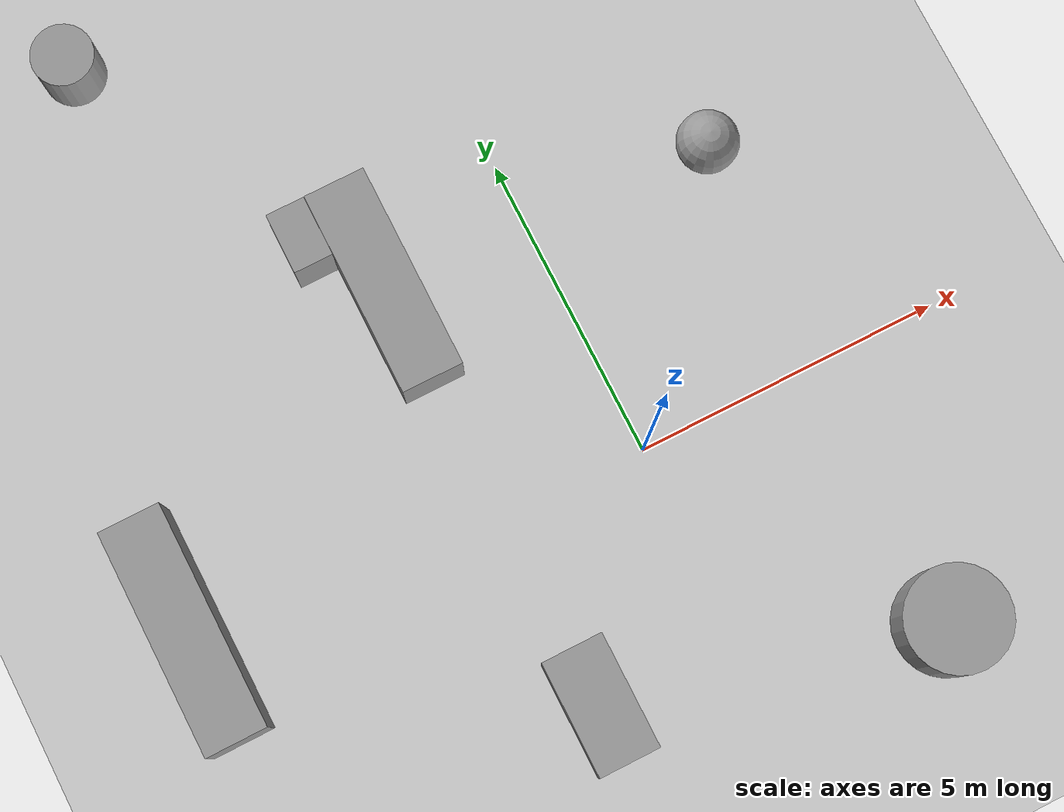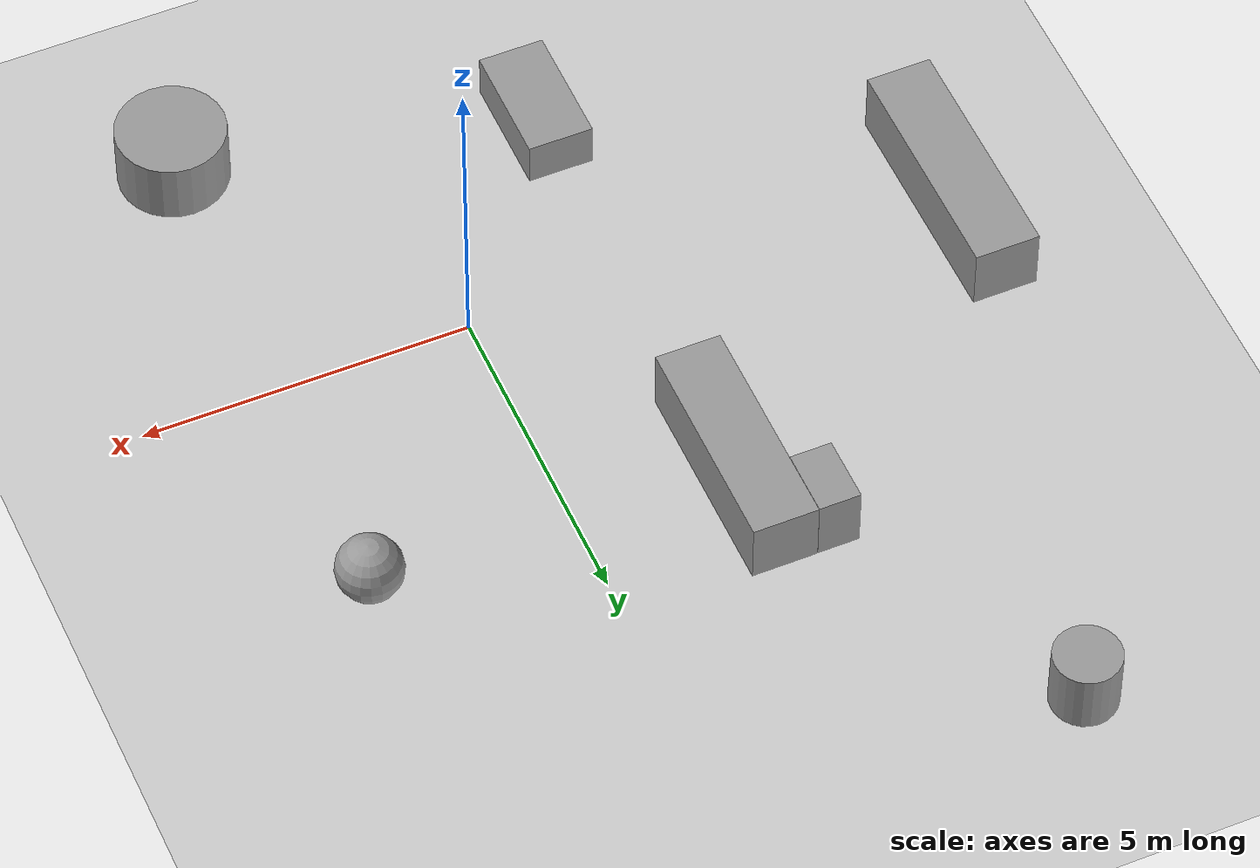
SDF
<sdf version="1.7">
 <world name="default">
  <light name="sun" type="directional">
   <pose>0 0 10 0 -0 0</pose>
   <diffuse>0.8 0.8 0.8 1</diffuse>
   <specular>0.2 0.2 0.2 1</specular>
   <attenuation>
    <range>1000</range>
    <constant>0.9</constant>
    <linear>0.01</linear>
    <quadratic>0.001</quadratic>
   </attenuation>
   <direction>-0.5 0.1 -0.9</direction>
   <spot><inner_angle>0</inner_angle><outer_angle>0</outer_angle><falloff>0</falloff></spot>
  </light>
  <model name="ground_plane">
   <static>1</static>
   <link name="link">
    <collision name="collision">
     <geometry><plane><normal>0 0 1</normal><size>100 100</size></plane></geometry>
     <surface>
      <contact><collide_bitmask>65535</collide_bitmask></contact>
      <friction><ode><mu>100</mu><mu2>50</mu2></ode></friction>
     </surface>
    </collision>
    <visual name="visual">
     <cast_shadows>0</cast_shadows>
     <geometry><plane><normal>0 0 1</normal><size>100 100</size></plane></geometry>
     <material>
      <script><uri>file://media/materials/scripts/gazebo.material</uri><name>Gazebo/Grey</name></script>
     </material>
    </visual>
   </link>
  </model>
  <gravity>0 0 -9.8</gravity>
  <magnetic_field>6e-06 2.3e-05 -4.2e-05</magnetic_field>
  <atmosphere type="adiabatic"/>
  <physics type="ode">
   <max_step_size>0.001</max_step_size>
   <real_time_factor>1</real_time_factor>
   <real_time_update_rate>1000</real_time_update_rate>
  </physics>
  <scene><ambient>0.4 0.4 0.4 1</ambient><background>0.7 0.7 0.7 1</background><shadows>1</shadows></scene>
  <audio><device>default</device></audio>
  <spherical_coordinates>
   <surface_model>EARTH_WGS84</surface_model>
   <latitude_deg>0</latitude_deg>
   <longitude_deg>0</longitude_deg>
   <elevation>0</elevation>
   <heading_deg>0</heading_deg>
  </spherical_coordinates>
  <model name="unit_box_1">
   <pose>-3.23534 5.16277 0.5 0 0 -2e-06</pose>
   <link name="link">
    <inertial>
     <mass>1</mass>
     <inertia>
      <ixx>0.166667</ixx>
      <ixy>0</ixy>
      <ixz>0</ixz>
      <iyy>0.166667</iyy>
      <iyz>0</iyz>
      <izz>0.166667</izz>
     </inertia>
    </inertial>
    <collision name="collision"><geometry><box><size>0.637201 1 1</size></box></geometry></collision>
    <visual name="visual">
     <geometry><box><size>0.637201 1 1</size></box></geometry>
     <material>
      <script><name>Gazebo/Grey</name><uri>file://media/materials/scripts/gazebo.material</uri></script>
     </material>
    </visual>
   </link>
   <static>1</static>
  </model>
  <model name="unit_box_4">
   <pose>-2.38141 -3.1313 0.35432 1.9e-05 -0 -6.2e-05</pose>
   <link name="link">
    <inertial>
     <mass>1</mass>
     <inertia>
      <ixx>0.166667</ixx>
      <ixy>0</ixy>
      <ixz>0</ixz>
      <iyy>0.166667</iyy>
      <iyz>0</iyz>
      <izz>0.166667</izz>
     </inertia>
    </inertial>
    <collision name="collision"><geometry><box><size>1 1.87531 0.708676</size></box></geometry></collision>
    <visual name="visual">
     <geometry><box><size>1 1.87531 0.708676</size></box></geometry>
     <material>
      <script><name>Gazebo/Grey</name><uri>file://media/materials/scripts/gazebo.material</uri></script>
     </material>
    </visual>
   </link>
  </model>
  <model name="unit_cylinder_1_clone">
   <pose>2.83996 -4.38871 0.499995 6e-06 -5e-06 0</pose>
   <link name="link">
    <inertial>
     <mass>1</mass>
     <inertia><ixx>0.145833</ixx><ixy>0</ixy><ixz>0</ixz><iyy>0.145833</iyy><iyz>0</iyz><izz>0.125</izz></inertia>
    </inertial>
    <collision name="collision">
     <geometry><cylinder><radius>0.831077</radius><length>1</length></cylinder></geometry>
    </collision>
    <visual name="visual">
     <geometry><cylinder><radius>0.831077</radius><length>1</length></cylinder></geometry>
     <material>
      <script><name>Gazebo/Grey</name><uri>file://media/materials/scripts/gazebo.material</uri></script>
     </material>
    </visual>
   </link>
  </model>
  <model name="unit_sphere_0">
   <pose>3.05667 3.7754 0.5 -0.00474 0.019082 -0.009261</pose>
   <link name="link">
    <inertial>
     <mass>1</mass>
     <inertia><ixx>0.1</ixx><ixy>0</ixy><ixz>0</ixz><iyy>0.1</iyy><iyz>0</iyz><izz>0.1</izz></inertia>
    </inertial>
    <collision name="collision"><geometry><sphere><radius>0.5</radius></sphere></geometry></collision>
    <visual name="visual">
     <geometry><sphere><radius>0.5</radius></sphere></geometry>
     <material>
      <script><name>Gazebo/Grey</name><uri>file://media/materials/scripts/gazebo.material</uri></script>
     </material>
    </visual>
   </link>
  </model>
  <model name="unit_box">
   <pose>-2.4128 3.97707 0.499995 -1e-06 -6e-06 0</pose>
   <link name="link">
    <inertial>
     <mass>1</mass>
     <inertia>
      <ixx>0.166667</ixx>
      <ixy>0</ixy>
      <ixz>0</ixz>
      <iyy>0.166667</iyy>
      <iyz>0</iyz>
      <izz>0.166667</izz>
     </inertia>
    </inertial>
    <collision name="collision"><geometry><box><size>1 3.38078 1</size></box></geometry></collision>
    <visual name="visual">
     <geometry><box><size>1 3.38078 1</size></box></geometry>
     <material>
      <script><name>Gazebo/Grey</name><uri>file://media/materials/scripts/gazebo.material</uri></script>
     </material>
    </visual>
   </link>
  </model>
  <model name="unit_box_0">
   <pose>-7.34696 0.606945 0.499506 0.000269 -0 0.003758</pose>
   <link name="link">
    <inertial>
     <mass>1</mass>
     <inertia>
      <ixx>0.166667</ixx>
      <ixy>0</ixy>
      <ixz>0</ixz>
      <iyy>0.166667</iyy>
      <iyz>0</iyz>
      <izz>0.166667</izz>
     </inertia>
    </inertial>
    <collision name="collision"><geometry><box><size>1 3.67427 1</size></box></geometry></collision>
    <visual name="visual">
     <geometry><box><size>1 3.67427 1</size></box></geometry>
     <material>
      <script><name>Gazebo/Grey</name><uri>file://media/materials/scripts/gazebo.material</uri></script>
     </material>
    </visual>
   </link>
  </model>
  <model name="unit_cylinder">
   <pose>-5.23985 9.36707 0.499997 3e-06 4e-06 -0</pose>
   <link name="link">
    <inertial>
     <mass>1</mass>
     <inertia><ixx>0.145833</ixx><ixy>0</ixy><ixz>0</ixz><iyy>0.145833</iyy><iyz>0</iyz><izz>0.125</izz></inertia>
    </inertial>
    <collision name="collision">
     <geometry><cylinder><radius>0.5</radius><length>1</length></cylinder></geometry>
    </collision>
    <visual name="visual">
     <geometry><cylinder><radius>0.5</radius><length>1</length></cylinder></geometry>
     <material>
      <script><name>Gazebo/Grey</name><uri>file://media/materials/scripts/gazebo.material</uri></script>
     </material>
    </visual>
   </link>
  </model>
 </world>
</sdf>
